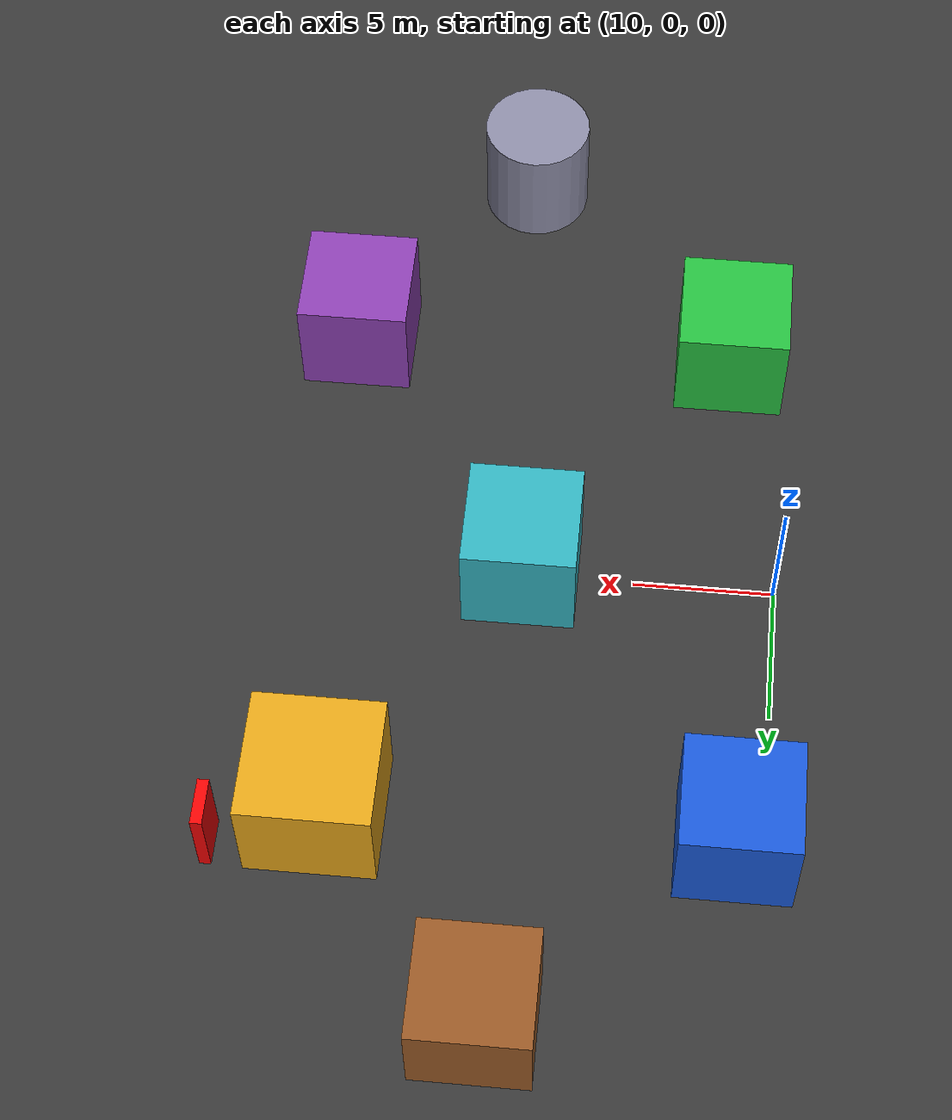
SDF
<?xml version="1.0" ?>

<sdf version="1.9">

  <world name="vision_test">

    <!-- PHYSICS                                   -->

    <physics type="ode">
      <max_step_size>0.004</max_step_size>
      <real_time_factor>1.0</real_time_factor>
      <real_time_update_rate>250</real_time_update_rate>
    </physics>

    <!-- WORLD SETTINGS                            -->

    <gravity>0 0 -9.8</gravity>

    <magnetic_field>
      6e-06 2.3e-05 -4.2e-05
    </magnetic_field>

    <atmosphere type="adiabatic"/>

    <spherical_coordinates>

      <surface_model>
        EARTH_WGS84
      </surface_model>

      <world_frame_orientation>
        ENU
      </world_frame_orientation>

      <latitude_deg>
        47.397971057728974
      </latitude_deg>

      <longitude_deg>
        8.546163739800146
      </longitude_deg>

      <elevation>
        0
      </elevation>

    </spherical_coordinates>

    <!-- SUN                                       -->

    <light
      type="directional"
      name="sun"
    >

      <cast_shadows>
        true
      </cast_shadows>

      <pose>
        0 0 20 0 0 0
      </pose>

      <diffuse>
        0.9 0.9 0.9 1
      </diffuse>

      <specular>
        0.2 0.2 0.2 1
      </specular>

      <direction>
        -0.5 0.1 -0.9
      </direction>

    </light>

    <!-- GROUND                                    -->

    <model name="ground_plane">

      <static>true</static>

      <link name="link">

        <collision name="collision">

          <geometry>

            <plane>

              <normal>
                0 0 1
              </normal>

              <size>
                100 100
              </size>

            </plane>

          </geometry>

        </collision>

        <visual name="visual">

          <geometry>

            <plane>

              <normal>
                0 0 1
              </normal>

              <size>
                100 100
              </size>

            </plane>

          </geometry>

          <material>

            <diffuse>
              0.22 0.22 0.22 1
            </diffuse>

          </material>

        </visual>

      </link>

    </model>

    <!-- OBJECT A                                  -->
    <!-- Position: x=11 y=10                      -->

    <model name="rack_alpha">

      <static>true</static>

      <pose>
        11 10 2 0 0 0
      </pose>

      <link name="link">

        <collision name="collision">

          <geometry>

            <box>

              <size>
                4 4 4
              </size>

            </box>

          </geometry>

        </collision>

        <visual name="visual">

          <geometry>

            <box>

              <size>
                4 4 4
              </size>

            </box>

          </geometry>

          <material>

            <diffuse>
              0.10 0.35 0.85 1
            </diffuse>

          </material>

        </visual>

      </link>

    </model>

    <!-- OBJECT B                                  -->
    <!-- Position: x=12 y=-10                     -->

    <model name="rack_beta">

      <static>true</static>

      <pose>
        12 -10 2 0 0 0
      </pose>

      <link name="link">

        <collision name="collision">

          <geometry>

            <box>

              <size>
                4 4 4
              </size>

            </box>

          </geometry>

        </collision>

        <visual name="visual">

          <geometry>

            <box>

              <size>
                4 4 4
              </size>

            </box>

          </geometry>

          <material>

            <diffuse>
              0.15 0.75 0.25 1
            </diffuse>

          </material>

        </visual>

      </link>

    </model>

    <!-- OBJECT C                                  -->
    <!-- Position: x=19 y=0                       -->

    <model name="machine_center">

      <static>true</static>

      <pose>
        19 0 2 0 0 0
      </pose>

      <link name="link">

        <collision name="collision">

          <geometry>

            <box>

              <size>
                4 4 4
              </size>

            </box>

          </geometry>

        </collision>

        <visual name="visual">

          <geometry>

            <box>

              <size>
                4 4 4
              </size>

            </box>

          </geometry>

          <material>

            <diffuse>
              0.20 0.70 0.75 1
            </diffuse>

          </material>

        </visual>

      </link>

    </model>

    <!-- OBJECT D                                  -->
    <!-- TARGET COVER                             -->
    <!-- Position: x=25 y=10                      -->

    <model name="rack_target_cover">

      <static>true</static>

      <pose>
        25 10 2 0 0 0
      </pose>

      <link name="link">

        <collision name="collision">

          <geometry>

            <box>

              <size>
                4.5 4.5 4
              </size>

            </box>

          </geometry>

        </collision>

        <visual name="visual">

          <geometry>

            <box>

              <size>
                4.5 4.5 4
              </size>

            </box>

          </geometry>

          <material>

            <diffuse>
              0.90 0.65 0.10 1
            </diffuse>

          </material>

        </visual>

      </link>

    </model>

    <!-- OBJECT E                                  -->
    <!-- Position: x=26 y=-10                     -->

    <model name="machine_delta">

      <static>true</static>

      <pose>
        26 -10 2 0 0 0
      </pose>

      <link name="link">

        <collision name="collision">

          <geometry>

            <box>

              <size>
                4 4 4
              </size>

            </box>

          </geometry>

        </collision>

        <visual name="visual">

          <geometry>

            <box>

              <size>
                4 4 4
              </size>

            </box>

          </geometry>

          <material>

            <diffuse>
              0.55 0.25 0.70 1
            </diffuse>

          </material>

        </visual>

      </link>

    </model>

    <!-- OBJECT F                                  -->
    <!-- Position: x=19 y=17                      -->

    <model name="crate_north">

      <static>true</static>

      <pose>
        19 17 1.75 0 0 0
      </pose>

      <link name="link">

        <collision name="collision">

          <geometry>

            <box>

              <size>
                4 4 3.5
              </size>

            </box>

          </geometry>

        </collision>

        <visual name="visual">

          <geometry>

            <box>

              <size>
                4 4 3.5
              </size>

            </box>

          </geometry>

          <material>

            <diffuse>
              0.60 0.35 0.15 1
            </diffuse>

          </material>

        </visual>

      </link>

    </model>

    <!-- OBJECT G                                  -->
    <!-- Position: x=20 y=-18                     -->
    <!-- Cylinder gives different geometry        -->

    <model name="tank_south">

      <static>true</static>

      <pose>
        20 -18 2 0 0 0
      </pose>

      <link name="link">

        <collision name="collision">

          <geometry>

            <cylinder>

              <radius>
                2
              </radius>

              <length>
                4
              </length>

            </cylinder>

          </geometry>

        </collision>

        <visual name="visual">

          <geometry>

            <cylinder>

              <radius>
                2
              </radius>

              <length>
                4
              </length>

            </cylinder>

          </geometry>

          <material>

            <diffuse>
              0.55 0.55 0.65 1
            </diffuse>

          </material>

        </visual>

      </link>

    </model>

    <!-- RED SEARCH TARGET                         -->
    <!-- Visual only.                              -->
    <!-- LiDAR obstacle olarak algılamayacak.       -->
    <!-- Target cover'ın arkasında.                -->

    <model name="red_search_target">

      <static>true</static>

      <pose>
        28.5 11.4 1.5 0 0 0
      </pose>

      <link name="link">

        <visual name="visual">

          <geometry>

            <box>

              <size>
                0.4 1.6 3
              </size>

            </box>

          </geometry>

          <material>

            <ambient>
              0.90 0.01 0.01 1
            </ambient>

            <diffuse>
              0.95 0.02 0.02 1
            </diffuse>

          </material>

        </visual>

      </link>

    </model>

  </world>

</sdf>
